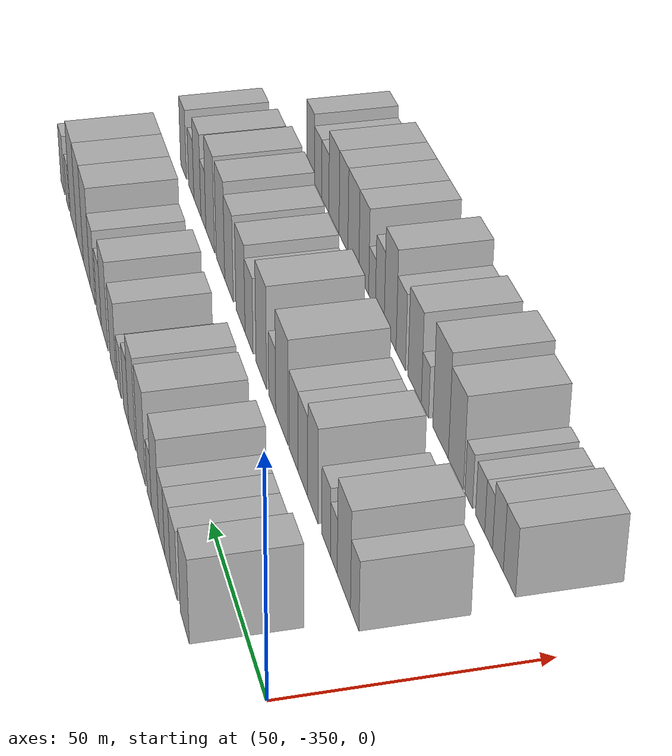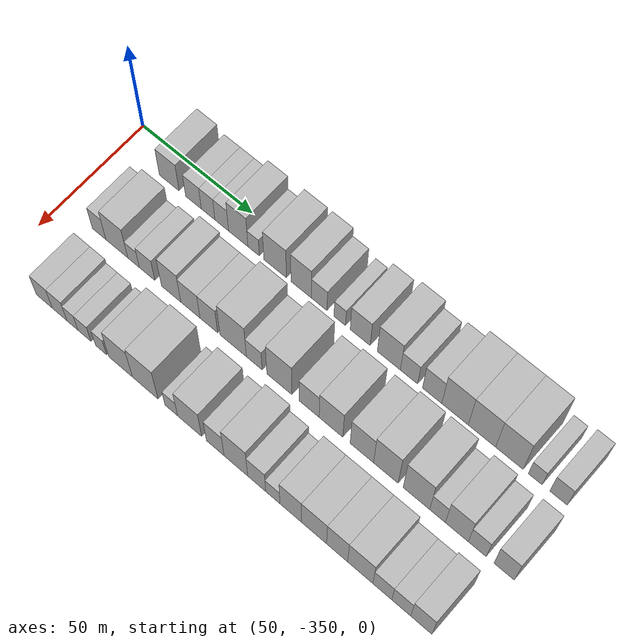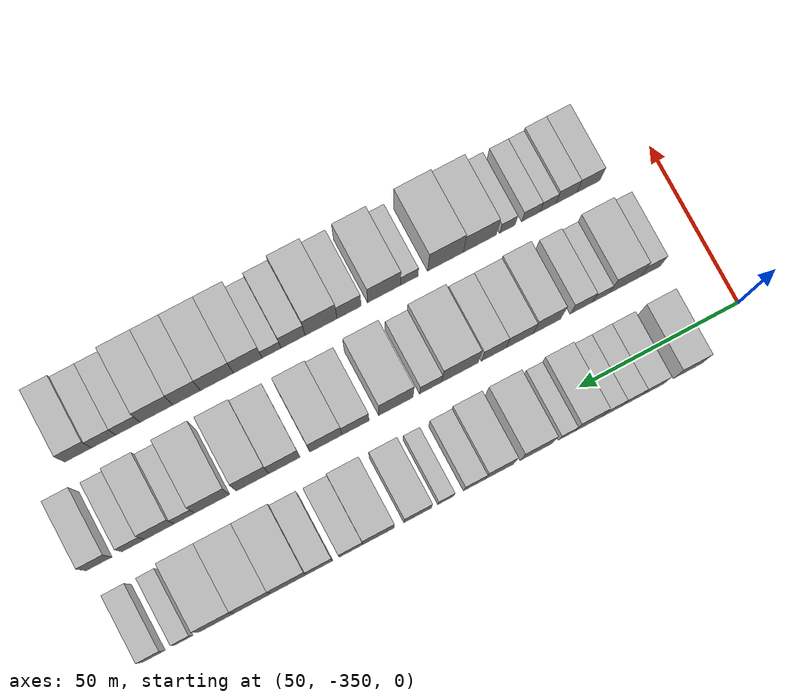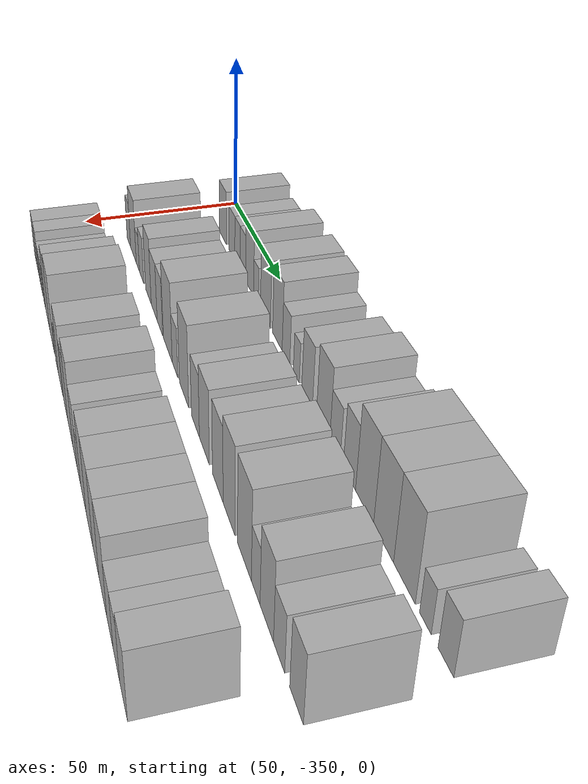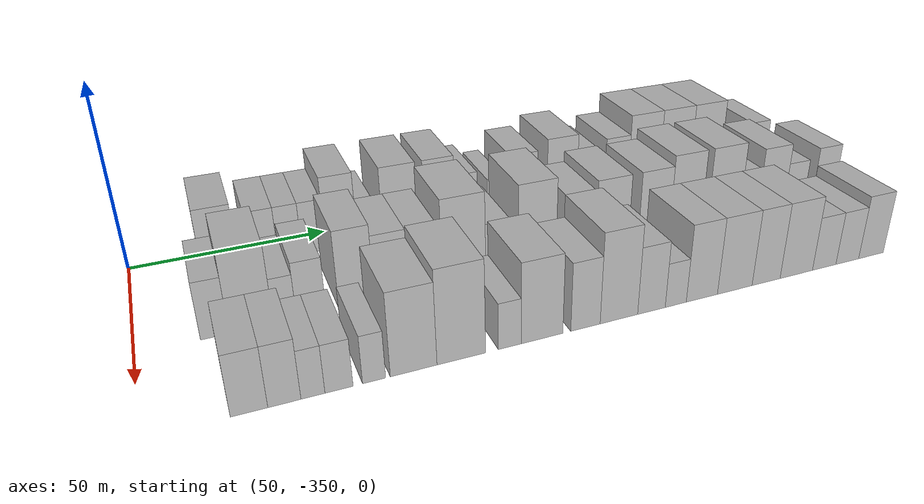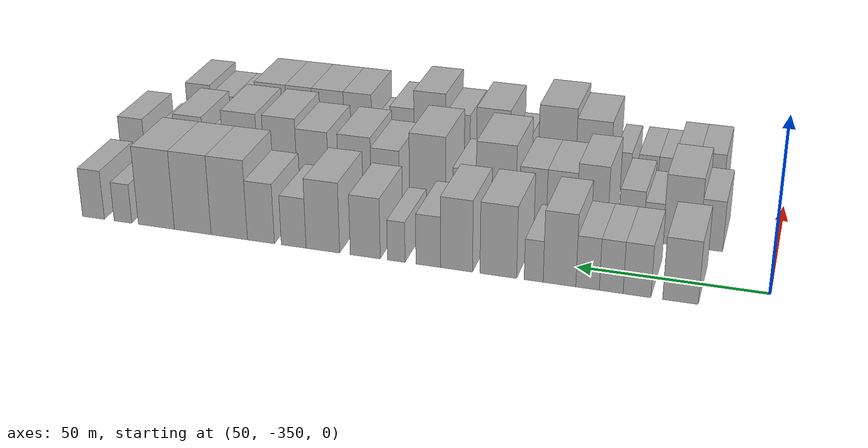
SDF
<sdf version="1.6">
 <world name="default">
  <model name="building_1">
   <static>1</static>
   <pose>50.0000 -328.5057 0 0.000000 0.000000 0.000000</pose>
   <link name="link">
    <pose>0 0 9.00 0 0 0</pose>
    <collision name="collision"><geometry><box><size>20.0000 8.9886 18.0000</size></box></geometry></collision>
    <visual name="visual">
     <cast_shadows>0</cast_shadows>
     <geometry><box><size>20.0000 8.9886 18.0000</size></box></geometry>
     <material>
      <script>
       <uri>model://HANNAS_wall/materials/scripts</uri>
       <uri>model://HANNAS_wall/materials/textures</uri>
       <name>vrc/HANNAS_wall</name>
      </script>
     </material>
    </visual>
   </link>
  </model>
  <model name="building_2">
   <static>1</static>
   <pose>50.0000 -317.4604 0 0.000000 0.000000 0.000000</pose>
   <link name="link">
    <pose>0 0 7.50 0 0 0</pose>
    <collision name="collision"><geometry><box><size>20.0000 7.1020 15.0000</size></box></geometry></collision>
    <visual name="visual">
     <cast_shadows>0</cast_shadows>
     <geometry><box><size>20.0000 7.1020 15.0000</size></box></geometry>
     <material>
      <script>
       <uri>model://HANNAS_wall/materials/scripts</uri>
       <uri>model://HANNAS_wall/materials/textures</uri>
       <name>vrc/HANNAS_wall</name>
      </script>
     </material>
    </visual>
   </link>
  </model>
  <model name="building_3">
   <static>1</static>
   <pose>50.0000 -310.8378 0 0.000000 0.000000 0.000000</pose>
   <link name="link">
    <pose>0 0 7.50 0 0 0</pose>
    <collision name="collision"><geometry><box><size>20.0000 6.1432 15.0000</size></box></geometry></collision>
    <visual name="visual">
     <cast_shadows>0</cast_shadows>
     <geometry><box><size>20.0000 6.1432 15.0000</size></box></geometry>
     <material>
      <script>
       <uri>model://HANNAS_wall/materials/scripts</uri>
       <uri>model://HANNAS_wall/materials/textures</uri>
       <name>vrc/HANNAS_wall</name>
      </script>
     </material>
    </visual>
   </link>
  </model>
  <model name="building_4">
   <static>1</static>
   <pose>50.0000 -304.7060 0 0.000000 0.000000 0.000000</pose>
   <link name="link">
    <pose>0 0 7.50 0 0 0</pose>
    <collision name="collision"><geometry><box><size>20.0000 6.1204 15.0000</size></box></geometry></collision>
    <visual name="visual">
     <cast_shadows>0</cast_shadows>
     <geometry><box><size>20.0000 6.1204 15.0000</size></box></geometry>
     <material>
      <script>
       <uri>model://HANNAS_wall/materials/scripts</uri>
       <uri>model://HANNAS_wall/materials/textures</uri>
       <name>vrc/HANNAS_wall</name>
      </script>
     </material>
    </visual>
   </link>
  </model>
  <model name="building_5">
   <static>1</static>
   <pose>50.0000 -297.3492 0 0.000000 0.000000 0.000000</pose>
   <link name="link">
    <pose>0 0 10.50 0 0 0</pose>
    <collision name="collision"><geometry><box><size>20.0000 8.5932 21.0000</size></box></geometry></collision>
    <visual name="visual">
     <cast_shadows>0</cast_shadows>
     <geometry><box><size>20.0000 8.5932 21.0000</size></box></geometry>
     <material>
      <script>
       <uri>model://HANNAS_wall/materials/scripts</uri>
       <uri>model://HANNAS_wall/materials/textures</uri>
       <name>vrc/HANNAS_wall</name>
      </script>
     </material>
    </visual>
   </link>
  </model>
  <model name="building_6">
   <static>1</static>
   <pose>50.0000 -290.5450 0 0.000000 0.000000 0.000000</pose>
   <link name="link">
    <pose>0 0 6.00 0 0 0</pose>
    <collision name="collision"><geometry><box><size>20.0000 5.0150 12.0000</size></box></geometry></collision>
    <visual name="visual">
     <cast_shadows>0</cast_shadows>
     <geometry><box><size>20.0000 5.0150 12.0000</size></box></geometry>
     <material>
      <script>
       <uri>model://HANNAS_wall/materials/scripts</uri>
       <uri>model://HANNAS_wall/materials/textures</uri>
       <name>vrc/HANNAS_wall</name>
      </script>
     </material>
    </visual>
   </link>
  </model>
  <model name="building_7">
   <static>1</static>
   <pose>50.0000 -281.1104 0 0.000000 0.000000 0.000000</pose>
   <link name="link">
    <pose>0 0 10.50 0 0 0</pose>
    <collision name="collision"><geometry><box><size>20.0000 9.8542 21.0000</size></box></geometry></collision>
    <visual name="visual">
     <cast_shadows>0</cast_shadows>
     <geometry><box><size>20.0000 9.8542 21.0000</size></box></geometry>
     <material>
      <script>
       <uri>model://HANNAS_wall/materials/scripts</uri>
       <uri>model://HANNAS_wall/materials/textures</uri>
       <name>vrc/HANNAS_wall</name>
      </script>
     </material>
    </visual>
   </link>
  </model>
  <model name="building_8">
   <static>1</static>
   <pose>50.0000 -269.7870 0 0.000000 0.000000 0.000000</pose>
   <link name="link">
    <pose>0 0 10.50 0 0 0</pose>
    <collision name="collision"><geometry><box><size>20.0000 8.7926 21.0000</size></box></geometry></collision>
    <visual name="visual">
     <cast_shadows>0</cast_shadows>
     <geometry><box><size>20.0000 8.7926 21.0000</size></box></geometry>
     <material>
      <script>
       <uri>model://HANNAS_wall/materials/scripts</uri>
       <uri>model://HANNAS_wall/materials/textures</uri>
       <name>vrc/HANNAS_wall</name>
      </script>
     </material>
    </visual>
   </link>
  </model>
  <model name="building_9">
   <static>1</static>
   <pose>50.0000 -262.0420 0 0.000000 0.000000 0.000000</pose>
   <link name="link">
    <pose>0 0 7.50 0 0 0</pose>
    <collision name="collision"><geometry><box><size>20.0000 6.6973 15.0000</size></box></geometry></collision>
    <visual name="visual">
     <cast_shadows>0</cast_shadows>
     <geometry><box><size>20.0000 6.6973 15.0000</size></box></geometry>
     <material>
      <script>
       <uri>model://HANNAS_wall/materials/scripts</uri>
       <uri>model://HANNAS_wall/materials/textures</uri>
       <name>vrc/HANNAS_wall</name>
      </script>
     </material>
    </visual>
   </link>
  </model>
  <model name="building_10">
   <static>1</static>
   <pose>50.0000 -253.2328 0 0.000000 0.000000 0.000000</pose>
   <link name="link">
    <pose>0 0 6.00 0 0 0</pose>
    <collision name="collision"><geometry><box><size>20.0000 4.9211 12.0000</size></box></geometry></collision>
    <visual name="visual">
     <cast_shadows>0</cast_shadows>
     <geometry><box><size>20.0000 4.9211 12.0000</size></box></geometry>
     <material>
      <script>
       <uri>model://HANNAS_wall/materials/scripts</uri>
       <uri>model://HANNAS_wall/materials/textures</uri>
       <name>vrc/HANNAS_wall</name>
      </script>
     </material>
    </visual>
   </link>
  </model>
  <model name="building_11">
   <static>1</static>
   <pose>50.0000 -244.5584 0 0.000000 0.000000 0.000000</pose>
   <link name="link">
    <pose>0 0 9.00 0 0 0</pose>
    <collision name="collision"><geometry><box><size>20.0000 8.4279 18.0000</size></box></geometry></collision>
    <visual name="visual">
     <cast_shadows>0</cast_shadows>
     <geometry><box><size>20.0000 8.4279 18.0000</size></box></geometry>
     <material>
      <script>
       <uri>model://HANNAS_wall/materials/scripts</uri>
       <uri>model://HANNAS_wall/materials/textures</uri>
       <name>vrc/HANNAS_wall</name>
      </script>
     </material>
    </visual>
   </link>
  </model>
  <model name="building_12">
   <static>1</static>
   <pose>50.0000 -232.5456 0 0.000000 0.000000 0.000000</pose>
   <link name="link">
    <pose>0 0 10.50 0 0 0</pose>
    <collision name="collision"><geometry><box><size>20.0000 9.5977 21.0000</size></box></geometry></collision>
    <visual name="visual">
     <cast_shadows>0</cast_shadows>
     <geometry><box><size>20.0000 9.5977 21.0000</size></box></geometry>
     <material>
      <script>
       <uri>model://HANNAS_wall/materials/scripts</uri>
       <uri>model://HANNAS_wall/materials/textures</uri>
       <name>vrc/HANNAS_wall</name>
      </script>
     </material>
    </visual>
   </link>
  </model>
  <model name="building_13">
   <static>1</static>
   <pose>50.0000 -224.1726 0 0.000000 0.000000 0.000000</pose>
   <link name="link">
    <pose>0 0 7.50 0 0 0</pose>
    <collision name="collision"><geometry><box><size>20.0000 7.1484 15.0000</size></box></geometry></collision>
    <visual name="visual">
     <cast_shadows>0</cast_shadows>
     <geometry><box><size>20.0000 7.1484 15.0000</size></box></geometry>
     <material>
      <script>
       <uri>model://HANNAS_wall/materials/scripts</uri>
       <uri>model://HANNAS_wall/materials/textures</uri>
       <name>vrc/HANNAS_wall</name>
      </script>
     </material>
    </visual>
   </link>
  </model>
  <model name="building_14">
   <static>1</static>
   <pose>50.0000 -214.6508 0 0.000000 0.000000 0.000000</pose>
   <link name="link">
    <pose>0 0 9.00 0 0 0</pose>
    <collision name="collision"><geometry><box><size>20.0000 7.8951 18.0000</size></box></geometry></collision>
    <visual name="visual">
     <cast_shadows>0</cast_shadows>
     <geometry><box><size>20.0000 7.8951 18.0000</size></box></geometry>
     <material>
      <script>
       <uri>model://HANNAS_wall/materials/scripts</uri>
       <uri>model://HANNAS_wall/materials/textures</uri>
       <name>vrc/HANNAS_wall</name>
      </script>
     </material>
    </visual>
   </link>
  </model>
  <model name="building_15">
   <static>1</static>
   <pose>50.0000 -205.3336 0 0.000000 0.000000 0.000000</pose>
   <link name="link">
    <pose>0 0 12.00 0 0 0</pose>
    <collision name="collision"><geometry><box><size>20.0000 10.7393 24.0000</size></box></geometry></collision>
    <visual name="visual">
     <cast_shadows>0</cast_shadows>
     <geometry><box><size>20.0000 10.7393 24.0000</size></box></geometry>
     <material>
      <script>
       <uri>model://HANNAS_wall/materials/scripts</uri>
       <uri>model://HANNAS_wall/materials/textures</uri>
       <name>vrc/HANNAS_wall</name>
      </script>
     </material>
    </visual>
   </link>
  </model>
  <model name="building_16">
   <static>1</static>
   <pose>50.0000 -194.4689 0 0.000000 0.000000 0.000000</pose>
   <link name="link">
    <pose>0 0 12.00 0 0 0</pose>
    <collision name="collision"><geometry><box><size>20.0000 10.9901 24.0000</size></box></geometry></collision>
    <visual name="visual">
     <cast_shadows>0</cast_shadows>
     <geometry><box><size>20.0000 10.9901 24.0000</size></box></geometry>
     <material>
      <script>
       <uri>model://HANNAS_wall/materials/scripts</uri>
       <uri>model://HANNAS_wall/materials/textures</uri>
       <name>vrc/HANNAS_wall</name>
      </script>
     </material>
    </visual>
   </link>
  </model>
  <model name="building_17">
   <static>1</static>
   <pose>50.0000 -183.5001 0 0.000000 0.000000 0.000000</pose>
   <link name="link">
    <pose>0 0 12.00 0 0 0</pose>
    <collision name="collision"><geometry><box><size>20.0000 10.9474 24.0000</size></box></geometry></collision>
    <visual name="visual">
     <cast_shadows>0</cast_shadows>
     <geometry><box><size>20.0000 10.9474 24.0000</size></box></geometry>
     <material>
      <script>
       <uri>model://HANNAS_wall/materials/scripts</uri>
       <uri>model://HANNAS_wall/materials/textures</uri>
       <name>vrc/HANNAS_wall</name>
      </script>
     </material>
    </visual>
   </link>
  </model>
  <model name="building_18">
   <static>1</static>
   <pose>50.0000 -173.3073 0 0.000000 0.000000 0.000000</pose>
   <link name="link">
    <pose>0 0 6.00 0 0 0</pose>
    <collision name="collision"><geometry><box><size>20.0000 5.4383 12.0000</size></box></geometry></collision>
    <visual name="visual">
     <cast_shadows>0</cast_shadows>
     <geometry><box><size>20.0000 5.4383 12.0000</size></box></geometry>
     <material>
      <script>
       <uri>model://HANNAS_wall/materials/scripts</uri>
       <uri>model://HANNAS_wall/materials/textures</uri>
       <name>vrc/HANNAS_wall</name>
      </script>
     </material>
    </visual>
   </link>
  </model>
  <model name="building_19">
   <static>1</static>
   <pose>50.0000 -164.1934 0 0.000000 0.000000 0.000000</pose>
   <link name="link">
    <pose>0 0 7.50 0 0 0</pose>
    <collision name="collision"><geometry><box><size>20.0000 6.7896 15.0000</size></box></geometry></collision>
    <visual name="visual">
     <cast_shadows>0</cast_shadows>
     <geometry><box><size>20.0000 6.7896 15.0000</size></box></geometry>
     <material>
      <script>
       <uri>model://HANNAS_wall/materials/scripts</uri>
       <uri>model://HANNAS_wall/materials/textures</uri>
       <name>vrc/HANNAS_wall</name>
      </script>
     </material>
    </visual>
   </link>
  </model>
  <model name="building_75">
   <static>1</static>
   <pose>79.0000 -332.9037 0 0.000000 0.000000 0.000000</pose>
   <link name="link">
    <pose>0 0 7.50 0 0 0</pose>
    <collision name="collision"><geometry><box><size>20.0000 6.1927 15.0000</size></box></geometry></collision>
    <visual name="visual">
     <cast_shadows>0</cast_shadows>
     <geometry><box><size>20.0000 6.1927 15.0000</size></box></geometry>
     <material>
      <script>
       <uri>model://HANNAS_wall/materials/scripts</uri>
       <uri>model://HANNAS_wall/materials/textures</uri>
       <name>vrc/HANNAS_wall</name>
      </script>
     </material>
    </visual>
   </link>
  </model>
  <model name="building_76">
   <static>1</static>
   <pose>79.0000 -324.8283 0 0.000000 0.000000 0.000000</pose>
   <link name="link">
    <pose>0 0 10.50 0 0 0</pose>
    <collision name="collision"><geometry><box><size>20.0000 9.9581 21.0000</size></box></geometry></collision>
    <visual name="visual">
     <cast_shadows>0</cast_shadows>
     <geometry><box><size>20.0000 9.9581 21.0000</size></box></geometry>
     <material>
      <script>
       <uri>model://HANNAS_wall/materials/scripts</uri>
       <uri>model://HANNAS_wall/materials/textures</uri>
       <name>vrc/HANNAS_wall</name>
      </script>
     </material>
    </visual>
   </link>
  </model>
  <model name="building_77">
   <static>1</static>
   <pose>79.0000 -317.2124 0 0.000000 0.000000 0.000000</pose>
   <link name="link">
    <pose>0 0 6.00 0 0 0</pose>
    <collision name="collision"><geometry><box><size>20.0000 5.2736 12.0000</size></box></geometry></collision>
    <visual name="visual">
     <cast_shadows>0</cast_shadows>
     <geometry><box><size>20.0000 5.2736 12.0000</size></box></geometry>
     <material>
      <script>
       <uri>model://HANNAS_wall/materials/scripts</uri>
       <uri>model://HANNAS_wall/materials/textures</uri>
       <name>vrc/HANNAS_wall</name>
      </script>
     </material>
    </visual>
   </link>
  </model>
  <model name="building_78">
   <static>1</static>
   <pose>79.0000 -311.1137 0 0.000000 0.000000 0.000000</pose>
   <link name="link">
    <pose>0 0 7.50 0 0 0</pose>
    <collision name="collision"><geometry><box><size>20.0000 6.9238 15.0000</size></box></geometry></collision>
    <visual name="visual">
     <cast_shadows>0</cast_shadows>
     <geometry><box><size>20.0000 6.9238 15.0000</size></box></geometry>
     <material>
      <script>
       <uri>model://HANNAS_wall/materials/scripts</uri>
       <uri>model://HANNAS_wall/materials/textures</uri>
       <name>vrc/HANNAS_wall</name>
      </script>
     </material>
    </visual>
   </link>
  </model>
  <model name="building_79">
   <static>1</static>
   <pose>79.0000 -300.3573 0 0.000000 0.000000 0.000000</pose>
   <link name="link">
    <pose>0 0 10.50 0 0 0</pose>
    <collision name="collision"><geometry><box><size>20.0000 8.5891 21.0000</size></box></geometry></collision>
    <visual name="visual">
     <cast_shadows>0</cast_shadows>
     <geometry><box><size>20.0000 8.5891 21.0000</size></box></geometry>
     <material>
      <script>
       <uri>model://HANNAS_wall/materials/scripts</uri>
       <uri>model://HANNAS_wall/materials/textures</uri>
       <name>vrc/HANNAS_wall</name>
      </script>
     </material>
    </visual>
   </link>
  </model>
  <model name="building_80">
   <static>1</static>
   <pose>79.0000 -291.8221 0 0.000000 0.000000 0.000000</pose>
   <link name="link">
    <pose>0 0 9.00 0 0 0</pose>
    <collision name="collision"><geometry><box><size>20.0000 8.4813 18.0000</size></box></geometry></collision>
    <visual name="visual">
     <cast_shadows>0</cast_shadows>
     <geometry><box><size>20.0000 8.4813 18.0000</size></box></geometry>
     <material>
      <script>
       <uri>model://HANNAS_wall/materials/scripts</uri>
       <uri>model://HANNAS_wall/materials/textures</uri>
       <name>vrc/HANNAS_wall</name>
      </script>
     </material>
    </visual>
   </link>
  </model>
  <model name="building_81">
   <static>1</static>
   <pose>79.0000 -283.7361 0 0.000000 0.000000 0.000000</pose>
   <link name="link">
    <pose>0 0 9.00 0 0 0</pose>
    <collision name="collision"><geometry><box><size>20.0000 7.6907 18.0000</size></box></geometry></collision>
    <visual name="visual">
     <cast_shadows>0</cast_shadows>
     <geometry><box><size>20.0000 7.6907 18.0000</size></box></geometry>
     <material>
      <script>
       <uri>model://HANNAS_wall/materials/scripts</uri>
       <uri>model://HANNAS_wall/materials/textures</uri>
       <name>vrc/HANNAS_wall</name>
      </script>
     </material>
    </visual>
   </link>
  </model>
  <model name="building_82">
   <static>1</static>
   <pose>79.0000 -273.1829 0 0.000000 0.000000 0.000000</pose>
   <link name="link">
    <pose>0 0 12.00 0 0 0</pose>
    <collision name="collision"><geometry><box><size>20.0000 11.4158 24.0000</size></box></geometry></collision>
    <visual name="visual">
     <cast_shadows>0</cast_shadows>
     <geometry><box><size>20.0000 11.4158 24.0000</size></box></geometry>
     <material>
      <script>
       <uri>model://HANNAS_wall/materials/scripts</uri>
       <uri>model://HANNAS_wall/materials/textures</uri>
       <name>vrc/HANNAS_wall</name>
      </script>
     </material>
    </visual>
   </link>
  </model>
  <model name="building_83">
   <static>1</static>
   <pose>79.0000 -264.0875 0 0.000000 0.000000 0.000000</pose>
   <link name="link">
    <pose>0 0 7.50 0 0 0</pose>
    <collision name="collision"><geometry><box><size>20.0000 6.7750 15.0000</size></box></geometry></collision>
    <visual name="visual">
     <cast_shadows>0</cast_shadows>
     <geometry><box><size>20.0000 6.7750 15.0000</size></box></geometry>
     <material>
      <script>
       <uri>model://HANNAS_wall/materials/scripts</uri>
       <uri>model://HANNAS_wall/materials/textures</uri>
       <name>vrc/HANNAS_wall</name>
      </script>
     </material>
    </visual>
   </link>
  </model>
  <model name="building_84">
   <static>1</static>
   <pose>79.0000 -253.3897 0 0.000000 0.000000 0.000000</pose>
   <link name="link">
    <pose>0 0 12.00 0 0 0</pose>
    <collision name="collision"><geometry><box><size>20.0000 10.6205 24.0000</size></box></geometry></collision>
    <visual name="visual">
     <cast_shadows>0</cast_shadows>
     <geometry><box><size>20.0000 10.6205 24.0000</size></box></geometry>
     <material>
      <script>
       <uri>model://HANNAS_wall/materials/scripts</uri>
       <uri>model://HANNAS_wall/materials/textures</uri>
       <name>vrc/HANNAS_wall</name>
      </script>
     </material>
    </visual>
   </link>
  </model>
  <model name="building_85">
   <static>1</static>
   <pose>79.0000 -240.8766 0 0.000000 0.000000 0.000000</pose>
   <link name="link">
    <pose>0 0 9.00 0 0 0</pose>
    <collision name="collision"><geometry><box><size>20.0000 8.4058 18.0000</size></box></geometry></collision>
    <visual name="visual">
     <cast_shadows>0</cast_shadows>
     <geometry><box><size>20.0000 8.4058 18.0000</size></box></geometry>
     <material>
      <script>
       <uri>model://HANNAS_wall/materials/scripts</uri>
       <uri>model://HANNAS_wall/materials/textures</uri>
       <name>vrc/HANNAS_wall</name>
      </script>
     </material>
    </visual>
   </link>
  </model>
  <model name="building_86">
   <static>1</static>
   <pose>79.0000 -231.7666 0 0.000000 0.000000 0.000000</pose>
   <link name="link">
    <pose>0 0 10.50 0 0 0</pose>
    <collision name="collision"><geometry><box><size>20.0000 9.8141 21.0000</size></box></geometry></collision>
    <visual name="visual">
     <cast_shadows>0</cast_shadows>
     <geometry><box><size>20.0000 9.8141 21.0000</size></box></geometry>
     <material>
      <script>
       <uri>model://HANNAS_wall/materials/scripts</uri>
       <uri>model://HANNAS_wall/materials/textures</uri>
       <name>vrc/HANNAS_wall</name>
      </script>
     </material>
    </visual>
   </link>
  </model>
  <model name="building_87">
   <static>1</static>
   <pose>79.0000 -219.0505 0 0.000000 0.000000 0.000000</pose>
   <link name="link">
    <pose>0 0 10.50 0 0 0</pose>
    <collision name="collision"><geometry><box><size>20.0000 9.6182 21.0000</size></box></geometry></collision>
    <visual name="visual">
     <cast_shadows>0</cast_shadows>
     <geometry><box><size>20.0000 9.6182 21.0000</size></box></geometry>
     <material>
      <script>
       <uri>model://HANNAS_wall/materials/scripts</uri>
       <uri>model://HANNAS_wall/materials/textures</uri>
       <name>vrc/HANNAS_wall</name>
      </script>
     </material>
    </visual>
   </link>
  </model>
  <model name="building_88">
   <static>1</static>
   <pose>79.0000 -209.2514 0 0.000000 0.000000 0.000000</pose>
   <link name="link">
    <pose>0 0 12.00 0 0 0</pose>
    <collision name="collision"><geometry><box><size>20.0000 9.9800 24.0000</size></box></geometry></collision>
    <visual name="visual">
     <cast_shadows>0</cast_shadows>
     <geometry><box><size>20.0000 9.9800 24.0000</size></box></geometry>
     <material>
      <script>
       <uri>model://HANNAS_wall/materials/scripts</uri>
       <uri>model://HANNAS_wall/materials/textures</uri>
       <name>vrc/HANNAS_wall</name>
      </script>
     </material>
    </visual>
   </link>
  </model>
  <model name="building_89">
   <static>1</static>
   <pose>79.0000 -196.9439 0 0.000000 0.000000 0.000000</pose>
   <link name="link">
    <pose>0 0 12.00 0 0 0</pose>
    <collision name="collision"><geometry><box><size>20.0000 10.6351 24.0000</size></box></geometry></collision>
    <visual name="visual">
     <cast_shadows>0</cast_shadows>
     <geometry><box><size>20.0000 10.6351 24.0000</size></box></geometry>
     <material>
      <script>
       <uri>model://HANNAS_wall/materials/scripts</uri>
       <uri>model://HANNAS_wall/materials/textures</uri>
       <name>vrc/HANNAS_wall</name>
      </script>
     </material>
    </visual>
   </link>
  </model>
  <model name="building_90">
   <static>1</static>
   <pose>79.0000 -188.5260 0 0.000000 0.000000 0.000000</pose>
   <link name="link">
    <pose>0 0 7.50 0 0 0</pose>
    <collision name="collision"><geometry><box><size>20.0000 6.2005 15.0000</size></box></geometry></collision>
    <visual name="visual">
     <cast_shadows>0</cast_shadows>
     <geometry><box><size>20.0000 6.2005 15.0000</size></box></geometry>
     <material>
      <script>
       <uri>model://HANNAS_wall/materials/scripts</uri>
       <uri>model://HANNAS_wall/materials/textures</uri>
       <name>vrc/HANNAS_wall</name>
      </script>
     </material>
    </visual>
   </link>
  </model>
  <model name="building_91">
   <static>1</static>
   <pose>79.0000 -180.8947 0 0.000000 0.000000 0.000000</pose>
   <link name="link">
    <pose>0 0 10.50 0 0 0</pose>
    <collision name="collision"><geometry><box><size>20.0000 9.0622 21.0000</size></box></geometry></collision>
    <visual name="visual">
     <cast_shadows>0</cast_shadows>
     <geometry><box><size>20.0000 9.0622 21.0000</size></box></geometry>
     <material>
      <script>
       <uri>model://HANNAS_wall/materials/scripts</uri>
       <uri>model://HANNAS_wall/materials/textures</uri>
       <name>vrc/HANNAS_wall</name>
      </script>
     </material>
    </visual>
   </link>
  </model>
  <model name="building_92">
   <static>1</static>
   <pose>79.0000 -172.8697 0 0.000000 0.000000 0.000000</pose>
   <link name="link">
    <pose>0 0 7.50 0 0 0</pose>
    <collision name="collision"><geometry><box><size>20.0000 6.9878 15.0000</size></box></geometry></collision>
    <visual name="visual">
     <cast_shadows>0</cast_shadows>
     <geometry><box><size>20.0000 6.9878 15.0000</size></box></geometry>
     <material>
      <script>
       <uri>model://HANNAS_wall/materials/scripts</uri>
       <uri>model://HANNAS_wall/materials/textures</uri>
       <name>vrc/HANNAS_wall</name>
      </script>
     </material>
    </visual>
   </link>
  </model>
  <model name="building_93">
   <static>1</static>
   <pose>79.0000 -162.4441 0 0.000000 0.000000 0.000000</pose>
   <link name="link">
    <pose>0 0 9.00 0 0 0</pose>
    <collision name="collision"><geometry><box><size>20.0000 7.8634 18.0000</size></box></geometry></collision>
    <visual name="visual">
     <cast_shadows>0</cast_shadows>
     <geometry><box><size>20.0000 7.8634 18.0000</size></box></geometry>
     <material>
      <script>
       <uri>model://HANNAS_wall/materials/scripts</uri>
       <uri>model://HANNAS_wall/materials/textures</uri>
       <name>vrc/HANNAS_wall</name>
      </script>
     </material>
    </visual>
   </link>
  </model>
  <model name="building_152">
   <static>1</static>
   <pose>108.0000 -329.3405 0 0.000000 0.000000 0.000000</pose>
   <link name="link">
    <pose>0 0 7.50 0 0 0</pose>
    <collision name="collision"><geometry><box><size>20.0000 7.3189 15.0000</size></box></geometry></collision>
    <visual name="visual">
     <cast_shadows>0</cast_shadows>
     <geometry><box><size>20.0000 7.3189 15.0000</size></box></geometry>
     <material>
      <script>
       <uri>model://HANNAS_wall/materials/scripts</uri>
       <uri>model://HANNAS_wall/materials/textures</uri>
       <name>vrc/HANNAS_wall</name>
      </script>
     </material>
    </visual>
   </link>
  </model>
  <model name="building_153">
   <static>1</static>
   <pose>108.0000 -322.3605 0 0.000000 0.000000 0.000000</pose>
   <link name="link">
    <pose>0 0 7.50 0 0 0</pose>
    <collision name="collision"><geometry><box><size>20.0000 6.6412 15.0000</size></box></geometry></collision>
    <visual name="visual">
     <cast_shadows>0</cast_shadows>
     <geometry><box><size>20.0000 6.6412 15.0000</size></box></geometry>
     <material>
      <script>
       <uri>model://HANNAS_wall/materials/scripts</uri>
       <uri>model://HANNAS_wall/materials/textures</uri>
       <name>vrc/HANNAS_wall</name>
      </script>
     </material>
    </visual>
   </link>
  </model>
  <model name="building_154">
   <static>1</static>
   <pose>108.0000 -316.5904 0 0.000000 0.000000 0.000000</pose>
   <link name="link">
    <pose>0 0 6.00 0 0 0</pose>
    <collision name="collision"><geometry><box><size>20.0000 4.8989 12.0000</size></box></geometry></collision>
    <visual name="visual">
     <cast_shadows>0</cast_shadows>
     <geometry><box><size>20.0000 4.8989 12.0000</size></box></geometry>
     <material>
      <script>
       <uri>model://HANNAS_wall/materials/scripts</uri>
       <uri>model://HANNAS_wall/materials/textures</uri>
       <name>vrc/HANNAS_wall</name>
      </script>
     </material>
    </visual>
   </link>
  </model>
  <model name="building_155">
   <static>1</static>
   <pose>108.0000 -311.2081 0 0.000000 0.000000 0.000000</pose>
   <link name="link">
    <pose>0 0 6.00 0 0 0</pose>
    <collision name="collision"><geometry><box><size>20.0000 5.8656 12.0000</size></box></geometry></collision>
    <visual name="visual">
     <cast_shadows>0</cast_shadows>
     <geometry><box><size>20.0000 5.8656 12.0000</size></box></geometry>
     <material>
      <script>
       <uri>model://HANNAS_wall/materials/scripts</uri>
       <uri>model://HANNAS_wall/materials/textures</uri>
       <name>vrc/HANNAS_wall</name>
      </script>
     </material>
    </visual>
   </link>
  </model>
  <model name="building_156">
   <static>1</static>
   <pose>108.0000 -303.7957 0 0.000000 0.000000 0.000000</pose>
   <link name="link">
    <pose>0 0 6.00 0 0 0</pose>
    <collision name="collision"><geometry><box><size>20.0000 4.9592 12.0000</size></box></geometry></collision>
    <visual name="visual">
     <cast_shadows>0</cast_shadows>
     <geometry><box><size>20.0000 4.9592 12.0000</size></box></geometry>
     <material>
      <script>
       <uri>model://HANNAS_wall/materials/scripts</uri>
       <uri>model://HANNAS_wall/materials/textures</uri>
       <name>vrc/HANNAS_wall</name>
      </script>
     </material>
    </visual>
   </link>
  </model>
  <model name="building_157">
   <static>1</static>
   <pose>108.0000 -295.1420 0 0.000000 0.000000 0.000000</pose>
   <link name="link">
    <pose>0 0 10.50 0 0 0</pose>
    <collision name="collision"><geometry><box><size>20.0000 10.3481 21.0000</size></box></geometry></collision>
    <visual name="visual">
     <cast_shadows>0</cast_shadows>
     <geometry><box><size>20.0000 10.3481 21.0000</size></box></geometry>
     <material>
      <script>
       <uri>model://HANNAS_wall/materials/scripts</uri>
       <uri>model://HANNAS_wall/materials/textures</uri>
       <name>vrc/HANNAS_wall</name>
      </script>
     </material>
    </visual>
   </link>
  </model>
  <model name="building_158">
   <static>1</static>
   <pose>108.0000 -284.3713 0 0.000000 0.000000 0.000000</pose>
   <link name="link">
    <pose>0 0 12.00 0 0 0</pose>
    <collision name="collision"><geometry><box><size>20.0000 11.1933 24.0000</size></box></geometry></collision>
    <visual name="visual">
     <cast_shadows>0</cast_shadows>
     <geometry><box><size>20.0000 11.1933 24.0000</size></box></geometry>
     <material>
      <script>
       <uri>model://HANNAS_wall/materials/scripts</uri>
       <uri>model://HANNAS_wall/materials/textures</uri>
       <name>vrc/HANNAS_wall</name>
      </script>
     </material>
    </visual>
   </link>
  </model>
  <model name="building_159">
   <static>1</static>
   <pose>108.0000 -273.0359 0 0.000000 0.000000 0.000000</pose>
   <link name="link">
    <pose>0 0 6.00 0 0 0</pose>
    <collision name="collision"><geometry><box><size>20.0000 5.4774 12.0000</size></box></geometry></collision>
    <visual name="visual">
     <cast_shadows>0</cast_shadows>
     <geometry><box><size>20.0000 5.4774 12.0000</size></box></geometry>
     <material>
      <script>
       <uri>model://HANNAS_wall/materials/scripts</uri>
       <uri>model://HANNAS_wall/materials/textures</uri>
       <name>vrc/HANNAS_wall</name>
      </script>
     </material>
    </visual>
   </link>
  </model>
  <model name="building_160">
   <static>1</static>
   <pose>108.0000 -265.1663 0 0.000000 0.000000 0.000000</pose>
   <link name="link">
    <pose>0 0 10.50 0 0 0</pose>
    <collision name="collision"><geometry><box><size>20.0000 10.2619 21.0000</size></box></geometry></collision>
    <visual name="visual">
     <cast_shadows>0</cast_shadows>
     <geometry><box><size>20.0000 10.2619 21.0000</size></box></geometry>
     <material>
      <script>
       <uri>model://HANNAS_wall/materials/scripts</uri>
       <uri>model://HANNAS_wall/materials/textures</uri>
       <name>vrc/HANNAS_wall</name>
      </script>
     </material>
    </visual>
   </link>
  </model>
  <model name="building_161">
   <static>1</static>
   <pose>108.0000 -254.2823 0 0.000000 0.000000 0.000000</pose>
   <link name="link">
    <pose>0 0 9.00 0 0 0</pose>
    <collision name="collision"><geometry><box><size>20.0000 7.5061 18.0000</size></box></geometry></collision>
    <visual name="visual">
     <cast_shadows>0</cast_shadows>
     <geometry><box><size>20.0000 7.5061 18.0000</size></box></geometry>
     <material>
      <script>
       <uri>model://HANNAS_wall/materials/scripts</uri>
       <uri>model://HANNAS_wall/materials/textures</uri>
       <name>vrc/HANNAS_wall</name>
      </script>
     </material>
    </visual>
   </link>
  </model>
  <model name="building_162">
   <static>1</static>
   <pose>108.0000 -245.5852 0 0.000000 0.000000 0.000000</pose>
   <link name="link">
    <pose>0 0 12.00 0 0 0</pose>
    <collision name="collision"><geometry><box><size>20.0000 9.8881 24.0000</size></box></geometry></collision>
    <visual name="visual">
     <cast_shadows>0</cast_shadows>
     <geometry><box><size>20.0000 9.8881 24.0000</size></box></geometry>
     <material>
      <script>
       <uri>model://HANNAS_wall/materials/scripts</uri>
       <uri>model://HANNAS_wall/materials/textures</uri>
       <name>vrc/HANNAS_wall</name>
      </script>
     </material>
    </visual>
   </link>
  </model>
  <model name="building_163">
   <static>1</static>
   <pose>108.0000 -236.9028 0 0.000000 0.000000 0.000000</pose>
   <link name="link">
    <pose>0 0 9.00 0 0 0</pose>
    <collision name="collision"><geometry><box><size>20.0000 7.4767 18.0000</size></box></geometry></collision>
    <visual name="visual">
     <cast_shadows>0</cast_shadows>
     <geometry><box><size>20.0000 7.4767 18.0000</size></box></geometry>
     <material>
      <script>
       <uri>model://HANNAS_wall/materials/scripts</uri>
       <uri>model://HANNAS_wall/materials/textures</uri>
       <name>vrc/HANNAS_wall</name>
      </script>
     </material>
    </visual>
   </link>
  </model>
  <model name="building_164">
   <static>1</static>
   <pose>108.0000 -230.2446 0 0.000000 0.000000 0.000000</pose>
   <link name="link">
    <pose>0 0 6.00 0 0 0</pose>
    <collision name="collision"><geometry><box><size>20.0000 5.8397 12.0000</size></box></geometry></collision>
    <visual name="visual">
     <cast_shadows>0</cast_shadows>
     <geometry><box><size>20.0000 5.8397 12.0000</size></box></geometry>
     <material>
      <script>
       <uri>model://HANNAS_wall/materials/scripts</uri>
       <uri>model://HANNAS_wall/materials/textures</uri>
       <name>vrc/HANNAS_wall</name>
      </script>
     </material>
    </visual>
   </link>
  </model>
  <model name="building_165">
   <static>1</static>
   <pose>108.0000 -222.8995 0 0.000000 0.000000 0.000000</pose>
   <link name="link">
    <pose>0 0 10.50 0 0 0</pose>
    <collision name="collision"><geometry><box><size>20.0000 8.8506 21.0000</size></box></geometry></collision>
    <visual name="visual">
     <cast_shadows>0</cast_shadows>
     <geometry><box><size>20.0000 8.8506 21.0000</size></box></geometry>
     <material>
      <script>
       <uri>model://HANNAS_wall/materials/scripts</uri>
       <uri>model://HANNAS_wall/materials/textures</uri>
       <name>vrc/HANNAS_wall</name>
      </script>
     </material>
    </visual>
   </link>
  </model>
  <model name="building_166">
   <static>1</static>
   <pose>108.0000 -213.4013 0 0.000000 0.000000 0.000000</pose>
   <link name="link">
    <pose>0 0 10.50 0 0 0</pose>
    <collision name="collision"><geometry><box><size>20.0000 10.1459 21.0000</size></box></geometry></collision>
    <visual name="visual">
     <cast_shadows>0</cast_shadows>
     <geometry><box><size>20.0000 10.1459 21.0000</size></box></geometry>
     <material>
      <script>
       <uri>model://HANNAS_wall/materials/scripts</uri>
       <uri>model://HANNAS_wall/materials/textures</uri>
       <name>vrc/HANNAS_wall</name>
      </script>
     </material>
    </visual>
   </link>
  </model>
  <model name="building_167">
   <static>1</static>
   <pose>108.0000 -204.1041 0 0.000000 0.000000 0.000000</pose>
   <link name="link">
    <pose>0 0 10.50 0 0 0</pose>
    <collision name="collision"><geometry><box><size>20.0000 8.4485 21.0000</size></box></geometry></collision>
    <visual name="visual">
     <cast_shadows>0</cast_shadows>
     <geometry><box><size>20.0000 8.4485 21.0000</size></box></geometry>
     <material>
      <script>
       <uri>model://HANNAS_wall/materials/scripts</uri>
       <uri>model://HANNAS_wall/materials/textures</uri>
       <name>vrc/HANNAS_wall</name>
      </script>
     </material>
    </visual>
   </link>
  </model>
  <model name="building_168">
   <static>1</static>
   <pose>108.0000 -194.8472 0 0.000000 0.000000 0.000000</pose>
   <link name="link">
    <pose>0 0 10.50 0 0 0</pose>
    <collision name="collision"><geometry><box><size>20.0000 10.0652 21.0000</size></box></geometry></collision>
    <visual name="visual">
     <cast_shadows>0</cast_shadows>
     <geometry><box><size>20.0000 10.0652 21.0000</size></box></geometry>
     <material>
      <script>
       <uri>model://HANNAS_wall/materials/scripts</uri>
       <uri>model://HANNAS_wall/materials/textures</uri>
       <name>vrc/HANNAS_wall</name>
      </script>
     </material>
    </visual>
   </link>
  </model>
  <model name="building_169">
   <static>1</static>
   <pose>108.0000 -186.0752 0 0.000000 0.000000 0.000000</pose>
   <link name="link">
    <pose>0 0 7.50 0 0 0</pose>
    <collision name="collision"><geometry><box><size>20.0000 7.4787 15.0000</size></box></geometry></collision>
    <visual name="visual">
     <cast_shadows>0</cast_shadows>
     <geometry><box><size>20.0000 7.4787 15.0000</size></box></geometry>
     <material>
      <script>
       <uri>model://HANNAS_wall/materials/scripts</uri>
       <uri>model://HANNAS_wall/materials/textures</uri>
       <name>vrc/HANNAS_wall</name>
      </script>
     </material>
    </visual>
   </link>
  </model>
  <model name="building_170">
   <static>1</static>
   <pose>108.0000 -178.6299 0 0.000000 0.000000 0.000000</pose>
   <link name="link">
    <pose>0 0 7.50 0 0 0</pose>
    <collision name="collision"><geometry><box><size>20.0000 7.4118 15.0000</size></box></geometry></collision>
    <visual name="visual">
     <cast_shadows>0</cast_shadows>
     <geometry><box><size>20.0000 7.4118 15.0000</size></box></geometry>
     <material>
      <script>
       <uri>model://HANNAS_wall/materials/scripts</uri>
       <uri>model://HANNAS_wall/materials/textures</uri>
       <name>vrc/HANNAS_wall</name>
      </script>
     </material>
    </visual>
   </link>
  </model>
  <model name="building_171">
   <static>1</static>
   <pose>108.0000 -170.8244 0 0.000000 0.000000 0.000000</pose>
   <link name="link">
    <pose>0 0 9.00 0 0 0</pose>
    <collision name="collision"><geometry><box><size>20.0000 8.1992 18.0000</size></box></geometry></collision>
    <visual name="visual">
     <cast_shadows>0</cast_shadows>
     <geometry><box><size>20.0000 8.1992 18.0000</size></box></geometry>
     <material>
      <script>
       <uri>model://HANNAS_wall/materials/scripts</uri>
       <uri>model://HANNAS_wall/materials/textures</uri>
       <name>vrc/HANNAS_wall</name>
      </script>
     </material>
    </visual>
   </link>
  </model>
 </world>
</sdf>
